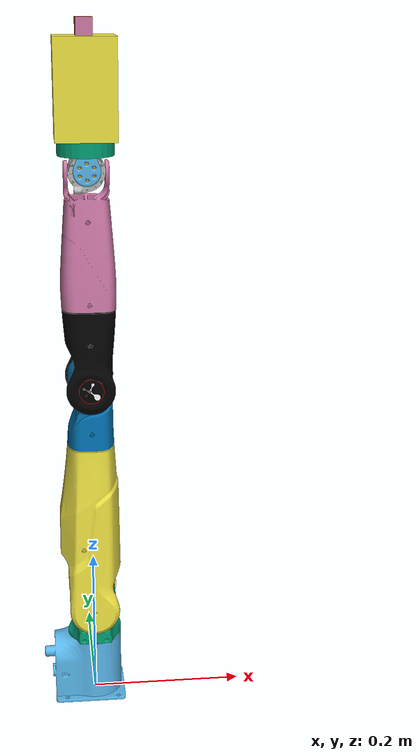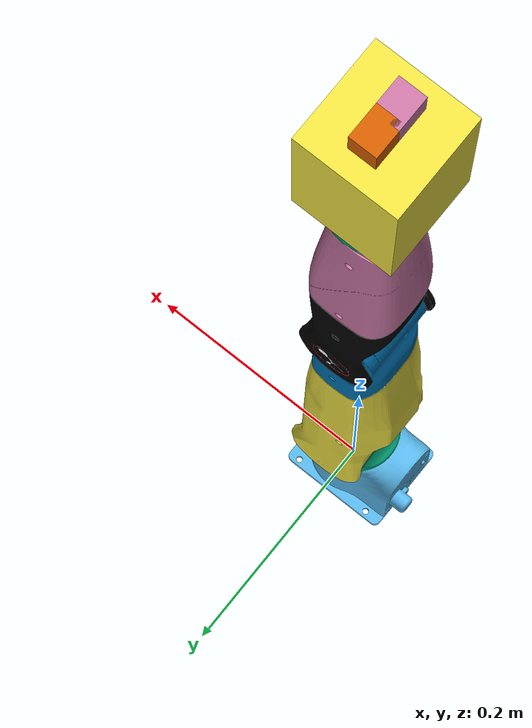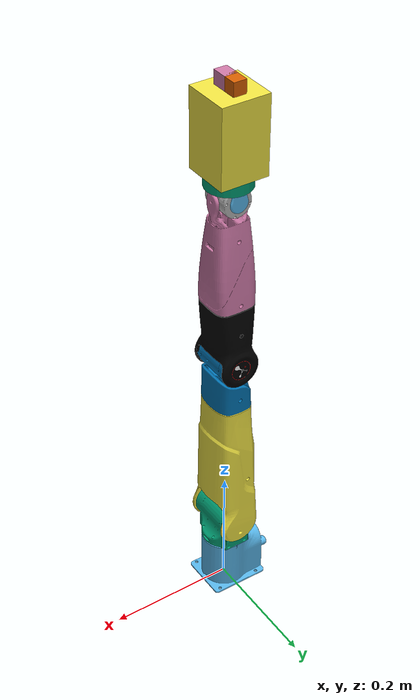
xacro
<?xml version="1.0"?>
<robot xmlns:xacro="http://www.ros.org/wiki/xacro" name="nero">
  <xacro:include filename="$(find agx_arm_description)/agx_arm_urdf/nero/urdf/nero_with_gripper_flange_description.xacro"/>
  <!-- Conservative primitives replace missing vendor meshes.  Dimensions
       enclose the physical gripper rather than understating its envelope. -->
  <link name="gripper_base">
    <visual><origin xyz="0 0 0.060"/><geometry><box size="0.075 0.075 0.120"/></geometry></visual>
    <collision><origin xyz="0 0 0.060"/><geometry><box size="0.080 0.080 0.125"/></geometry></collision>
    <inertial><mass value="0.45"/><origin xyz="0 0 0.050"/>
      <inertia ixx="0.00093" ixy="0" ixz="0" iyy="0.00072" iyz="0" izz="0.00040"/>
    </inertial>
  </link>
  <joint name="gripper_base_joint" type="fixed">
    <origin xyz="0 0 0.006"/><parent link="gripper_flange"/><child link="gripper_base"/>
  </joint>
  <link name="gripper_link"/>
  <joint name="gripper" type="prismatic">
    <parent link="gripper_base"/><child link="gripper_link"/>
    <axis xyz="0 0 1"/><limit lower="0" upper="0.1" effort="10" velocity="3"/>
  </joint>
  <link name="gripper_link1">
    <visual><origin xyz="0 -0.050 0.010"/><geometry><box size="0.020 0.105 0.025"/></geometry></visual>
    <collision><origin xyz="0 -0.050 0.010"/><geometry><box size="0.024 0.110 0.030"/></geometry></collision>
    <inertial><mass value="0.025"/><origin xyz="0 -0.05 0.01"/>
      <inertia ixx="0.000074" ixy="0" ixz="0" iyy="0.000008" iyz="0" izz="0.000075"/>
    </inertial>
  </link>
  <joint name="gripper_joint1" type="prismatic">
    <origin xyz="0 0 0.138" rpy="1.5707963 0 3.1415926"/>
    <parent link="gripper_base"/><child link="gripper_link1"/>
    <axis xyz="0 0 1"/><limit lower="0" upper="0.05" effort="10" velocity="3"/>
    <mimic joint="gripper" multiplier="0.5" offset="0"/>
  </joint>
  <link name="gripper_link2">
    <visual><origin xyz="0 -0.050 0.010"/><geometry><box size="0.020 0.105 0.025"/></geometry></visual>
    <collision><origin xyz="0 -0.050 0.010"/><geometry><box size="0.024 0.110 0.030"/></geometry></collision>
    <inertial><mass value="0.025"/><origin xyz="0 -0.05 0.01"/>
      <inertia ixx="0.000074" ixy="0" ixz="0" iyy="0.000008" iyz="0" izz="0.000075"/>
    </inertial>
  </link>
  <joint name="gripper_joint2" type="prismatic">
    <origin xyz="0 0 0.138" rpy="1.5707963 0 0"/>
    <parent link="gripper_base"/><child link="gripper_link2"/>
    <axis xyz="0 0 -1"/><limit lower="-0.05" upper="0" effort="10" velocity="3"/>
    <mimic joint="gripper" multiplier="-0.5" offset="0"/>
  </joint>
</robot>

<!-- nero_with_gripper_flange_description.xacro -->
<robot xmlns:xacro="http://www.ros.org/wiki/xacro" name="nero">
  <xacro:include filename="$(find nero_description)/urdf/nero_description.urdf"/>
  <link name="gripper_flange">
    <visual><geometry><cylinder radius="0.035" length="0.025"/></geometry></visual>
    <collision><geometry><cylinder radius="0.038" length="0.028"/></geometry></collision>
    <inertial><mass value="0.048"/><origin xyz="0 0 0"/>
      <inertia ixx="0.00004" ixy="0" ixz="0" iyy="0.00004" iyz="0" izz="0.00003"/>
    </inertial>
  </link>
  <joint name="gripper_flange_joint" type="fixed">
    <origin xyz="0.031 0 -0.0235" rpy="-1.5708 0 -1.5708"/>
    <parent link="link7"/><child link="gripper_flange"/>
  </joint>
</robot>

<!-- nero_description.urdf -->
<robot name="nero_description">
    <link name="world"/>
    <joint name="world_to_base_link" type="fixed">
        <parent link="world"/>
        <child link="base_link"/>
        <origin xyz="0 0 0" rpy="0 0 0"/>
    </joint>
    <link name="base_link">
        <inertial>
            <origin xyz="-0.00963614954335565 0.00016786624100977 0.044860101664403" rpy="0 0 0"/>
            <mass value="0.77"/>
            <inertia ixx="0.0006669" ixy="0.0" ixz="0.0" iyy="0.00054501" iyz="0.0" izz="0.00051509"/>
        </inertial>
        <visual>
            <origin xyz="0 0 0" rpy="0 0 0"/>
            <geometry>
                <mesh filename="package://nero_description/meshes/dae/base_link.dae"/>
            </geometry>
        </visual>
        <collision>
            <origin xyz="0 0 0" rpy="0 0 0"/>
            <geometry>
                <mesh filename="package://nero_description/meshes/base_link.STL"/>
            </geometry>
        </collision>
    </link>
    <link name="link1">
        <inertial>
            <origin xyz="-0.00077 -0.00006 -0.00686" rpy="0 0 0"/>
            <mass value="0.77"/>
            <inertia ixx="0.0006669" ixy="0.0" ixz="0.0" iyy="0.00054501" iyz="0.0" izz="0.00051509"/>
        </inertial>
        <visual>
            <origin xyz="0 0 0" rpy="0 0 0"/>
            <geometry>
                <mesh filename="package://nero_description/meshes/dae/link1.dae"/>
            </geometry>
        </visual>
        <collision>
            <origin xyz="0 0 0" rpy="0 0 0"/>
            <geometry>
                <mesh filename="package://nero_description/meshes/Link1.STL"/>
            </geometry>
        </collision>
    </link>
    <joint name="joint1" type="revolute">
        <origin xyz="0 0 0.138" rpy="0 0 0"/>
        <parent link="base_link"/>
        <child link="link1"/>
        <axis xyz="0 0 1"/>
        <limit lower="-2.7" upper="2.7" effort="0" velocity="0"/>
    </joint>
    <link name="link2">
        <inertial>
            <origin xyz="-0.00011 -0.06072 0.00148" rpy="0 0 0"/>
            <mass value="0.49"/>
            <inertia ixx="0.00053808" ixy="0.0" ixz="0.0" iyy="0.00029435" iyz="0.0" izz="0.00040266"/>
        </inertial>
        <visual>
            <origin xyz="0 0 0" rpy="0 0 0"/>
            <geometry>
                <mesh filename="package://nero_description/meshes/dae/link2.dae"/>
            </geometry>
        </visual>
        <collision>
            <origin xyz="0 0 0" rpy="0 0 0"/>
            <geometry>
                <mesh filename="package://nero_description/meshes/Link2.STL"/>
            </geometry>
        </collision>
    </link>
    <joint name="joint2" type="revolute">
        <origin xyz="0 0 0" rpy="1.5708 3.1415 0"/>
        <parent link="link1"/>
        <child link="link2"/>
        <axis xyz="0 0 1"/>
        <limit lower="-1.74" upper="1.74" effort="0" velocity="0"/>
    </joint>
    <link name="link3">
        <inertial>
            <origin xyz="0.00014 0.00211 -0.04853" rpy="0 0 0"/>
            <mass value="0.67"/>
            <inertia ixx="0.00342528" ixy="0.0" ixz="0.0" iyy="0.0033924" iyz="0.0" izz="0.00026169"/>
        </inertial>
        <visual>
            <origin xyz="0 0 0" rpy="0 0 0"/>
            <geometry>
                <mesh filename="package://nero_description/meshes/dae/link3.dae"/>
            </geometry>
        </visual>
        <collision>
            <origin xyz="0 0 0" rpy="0 0 0"/>
            <geometry>
                <mesh filename="package://nero_description/meshes/Link3.STL"/>
            </geometry>
        </collision>
    </link>
    <joint name="joint3" type="revolute">
        <origin xyz="0 -0.31 0" rpy="-1.5708 0 3.1416"/>
        <parent link="link2"/>
        <child link="link3"/>
        <axis xyz="0 0 1"/>
        <limit lower="-2.75" upper="2.75" effort="0" velocity="0"/>
    </joint>
    <link name="link4">
        <inertial>
            <origin xyz="-0.00013 -0.05482 0.00132" rpy="0 0 0"/>
            <mass value="0.41"/>
            <inertia ixx="0.00031331" ixy="0.0" ixz="0.0" iyy="0.00013204" iyz="0.0" izz="0.0002393"/>
        </inertial>
        <visual>
            <origin xyz="0 0 0" rpy="0 0 0"/>
            <geometry>
                <mesh filename="package://nero_description/meshes/dae/link4.dae"/>
            </geometry>
        </visual>
        <collision>
            <origin xyz="0 0 0" rpy="0 0 0"/>
            <geometry>
                <mesh filename="package://nero_description/meshes/Link4.STL"/>
            </geometry>
        </collision>
    </link>
    <joint name="joint4" type="revolute">
        <origin xyz="0 0 0" rpy="-1.5708 0 3.1416"/>
        <parent link="link3"/>
        <child link="link4"/>
        <axis xyz="0 0 1"/>
        <limit lower="-1.01" upper="2.14" effort="0" velocity="0"/>
    </joint>
    <link name="link5">
        <inertial>
            <origin xyz="0.00303 0.00617 -0.11778" rpy="0 0 0"/>
            <mass value="0.56"/>
            <inertia ixx="0.0008249" ixy="0.0" ixz="0.0" iyy="0.00078548" iyz="0.0" izz="0.00021015"/>
        </inertial>
        <visual>
            <origin xyz="0 0 0" rpy="0 0 0"/>
            <geometry>
                <mesh filename="package://nero_description/meshes/dae/link5.dae"/>
            </geometry>
        </visual>
        <collision>
            <origin xyz="0 0 0" rpy="0 0 0"/>
            <geometry>
                <mesh filename="package://nero_description/meshes/Link5.STL"/>
            </geometry>
        </collision>
    </link>
    <joint name="joint5" type="revolute">
        <origin xyz="0 -0.27001 0" rpy="1.5708 -1.5708 0"/>
        <parent link="link4"/>
        <child link="link5"/>
        <axis xyz="0 0 1"/>
        <limit lower="-2.75" upper="2.75" effort="0" velocity="0"/>
    </joint>
    <link name="link6">
        <inertial>
            <origin xyz="0.00014 -0.0027 -0.00025" rpy="0 0 0"/>
            <mass value="0.31"/>
            <inertia ixx="0.00008181" ixy="0.0" ixz="0.0" iyy="0.00007176" iyz="0.0" izz="0.00007906"/>
        </inertial>
        <visual>
            <origin xyz="0 0 0" rpy="0 0 0"/>
            <geometry>
                <mesh filename="package://nero_description/meshes/dae/link6.dae"/>
            </geometry>
        </visual>
        <collision>
            <origin xyz="0 0 0" rpy="0 0 0"/>
            <geometry>
                <mesh filename="package://nero_description/meshes/Link6.STL"/>
            </geometry>
        </collision>
    </link>
    <joint name="joint6" type="revolute">
        <origin xyz="0 0 0" rpy="1.5708 -1.5708 0"/>
        <parent link="link5"/>
        <child link="link6"/>
        <axis xyz="0 0 1"/>
        <limit lower="-0.73" upper="0.95" effort="0" velocity="0"/>
    </joint>
    <link name="link7">
        <inertial>
            <origin xyz="-0.00014000 -0.00010000 -0.00275000" rpy="0 0 0"/>
            <mass value="0.000001"/>
            <inertia ixx="1.1000000000000001e-07" ixy="0" ixz="0" iyy="1.1000000000000001e-07" iyz="0" izz="1.9999999999999999e-07"/>
        </inertial>
        <visual>
            <origin xyz="0 0 0" rpy="0 0 0"/>
            <geometry>
                <mesh filename="package://nero_description/meshes/dae/link7.dae"/>
            </geometry>
        </visual>
        <collision>
            <origin xyz="0 0 0" rpy="0 0 0"/>
            <geometry>
                <mesh filename="package://nero_description/meshes/Link7.STL"/>
            </geometry>
        </collision>
    </link>
    <joint name="joint7" type="revolute">
        <origin xyz="0 -0.0235 0" rpy="1.5708 0 0"/>
        <parent link="link6"/>
        <child link="link7"/>
        <axis xyz="0 0 1"/>
        <limit lower="-1.57" upper="1.57" effort="0" velocity="0"/>
    </joint>
    <link name="end_effector">
        <inertial>
        <origin xyz="-0.01208 -0.00025 0.00032" rpy="0 0 0"/>
        <mass value="0.05"/>
        <inertia
            ixx="2.697e-05"
            ixy="0"
            ixz="0"
            iyy="4.311e-05"
            iyz="0"
            izz="2.479e-05"/>
        </inertial>
        <visual>
            <origin xyz="0 0 0" rpy="-1.57 -1.57 -1.57"/>
            <geometry>
                <mesh filename="package://nero_description/meshes/stand_v1.dae"/>
            </geometry>
        </visual>
        <collision>
            <origin xyz="0 0 0" rpy="-1.57 -1.57 -1.57"/>
            <geometry>
                <mesh filename="package://nero_description/meshes/stand_v1.dae"/>
            </geometry>
        </collision>
    </link>
    <joint name="end_effector_joint" type="fixed">
        <origin xyz="0.033 0.00000000 -0.02350000" rpy="0 0 0"/>
        <parent link="link7"/>
        <child link="end_effector"/>
    </joint>
</robot>
